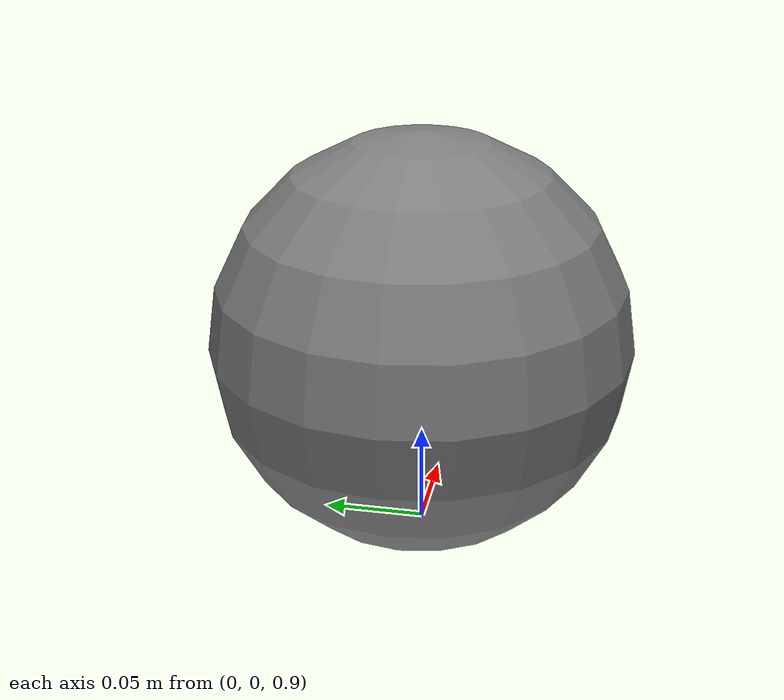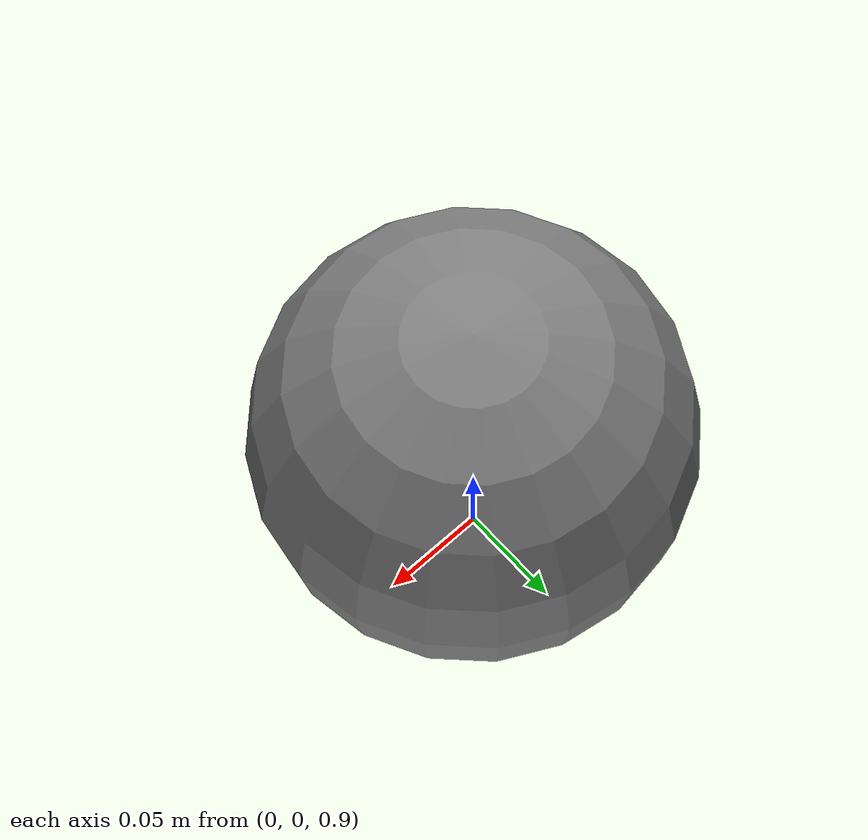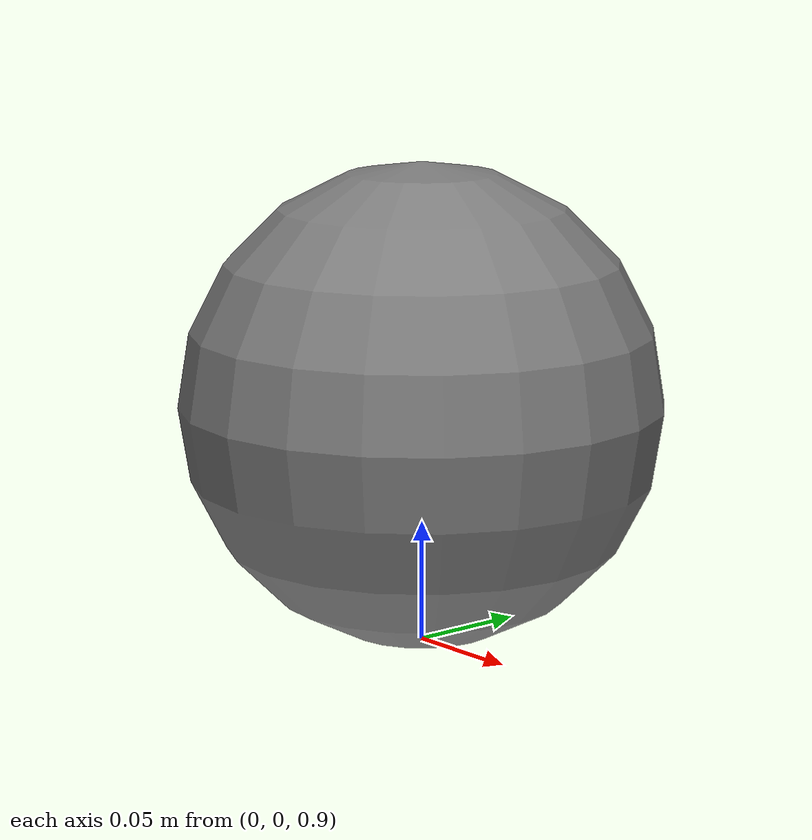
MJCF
<mujoco><compiler angle="radian"/><option timestep=".002" gravity="0 0 0"/><default><geom contype="0" conaffinity="0"/></default><worldbody><body pos="0 0 1"><freejoint/><geom type="sphere" size=".1" mass="1"/><body><joint name="j0" type="hinge" axis="0 0 1" range="-2 2"/><geom type="sphere" size=".01" mass=".01"/></body><body><joint name="j1" type="hinge" axis="0 0 1" range="-2 2"/><geom type="sphere" size=".01" mass=".01"/></body><body><joint name="j2" type="hinge" axis="0 0 1" range="-2 2"/><geom type="sphere" size=".01" mass=".01"/></body><body><joint name="j3" type="hinge" axis="0 0 1" range="-2 2"/><geom type="sphere" size=".01" mass=".01"/></body><body><joint name="j4" type="hinge" axis="0 0 1" range="-2 2"/><geom type="sphere" size=".01" mass=".01"/></body><body><joint name="j5" type="hinge" axis="0 0 1" range="-2 2"/><geom type="sphere" size=".01" mass=".01"/></body><body><joint name="j6" type="hinge" axis="0 0 1" range="-2 2"/><geom type="sphere" size=".01" mass=".01"/></body><body><joint name="j7" type="hinge" axis="0 0 1" range="-2 2"/><geom type="sphere" size=".01" mass=".01"/></body><body><joint name="j8" type="hinge" axis="0 0 1" range="-2 2"/><geom type="sphere" size=".01" mass=".01"/></body><body><joint name="j9" type="hinge" axis="0 0 1" range="-2 2"/><geom type="sphere" size=".01" mass=".01"/></body><body><joint name="j10" type="hinge" axis="0 0 1" range="-2 2"/><geom type="sphere" size=".01" mass=".01"/></body><body><joint name="j11" type="hinge" axis="0 0 1" range="-2 2"/><geom type="sphere" size=".01" mass=".01"/></body><body><joint name="j12" type="hinge" axis="0 0 1" range="-2 2"/><geom type="sphere" size=".01" mass=".01"/></body><body><joint name="j13" type="hinge" axis="0 0 1" range="-2 2"/><geom type="sphere" size=".01" mass=".01"/></body><body><joint name="j14" type="hinge" axis="0 0 1" range="-2 2"/><geom type="sphere" size=".01" mass=".01"/></body><body><joint name="j15" type="hinge" axis="0 0 1" range="-2 2"/><geom type="sphere" size=".01" mass=".01"/></body><body><joint name="j16" type="hinge" axis="0 0 1" range="-2 2"/><geom type="sphere" size=".01" mass=".01"/></body><body><joint name="j17" type="hinge" axis="0 0 1" range="-2 2"/><geom type="sphere" size=".01" mass=".01"/></body><body><joint name="j18" type="hinge" axis="0 0 1" range="-2 2"/><geom type="sphere" size=".01" mass=".01"/></body><body><joint name="j19" type="hinge" axis="0 0 1" range="-2 2"/><geom type="sphere" size=".01" mass=".01"/></body><body><joint name="j20" type="hinge" axis="0 0 1" range="-2 2"/><geom type="sphere" size=".01" mass=".01"/></body><body><joint name="j21" type="hinge" axis="0 0 1" range="-2 2"/><geom type="sphere" size=".01" mass=".01"/></body><body><joint name="j22" type="hinge" axis="0 0 1" range="-2 2"/><geom type="sphere" size=".01" mass=".01"/></body></body></worldbody><actuator><motor joint="j0"/><motor joint="j1"/><motor joint="j2"/><motor joint="j3"/><motor joint="j4"/><motor joint="j5"/><motor joint="j6"/><motor joint="j7"/><motor joint="j8"/><motor joint="j9"/><motor joint="j10"/><motor joint="j11"/><motor joint="j12"/><motor joint="j13"/><motor joint="j14"/><motor joint="j15"/><motor joint="j16"/><motor joint="j17"/><motor joint="j18"/><motor joint="j19"/><motor joint="j20"/><motor joint="j21"/><motor joint="j22"/></actuator></mujoco>
